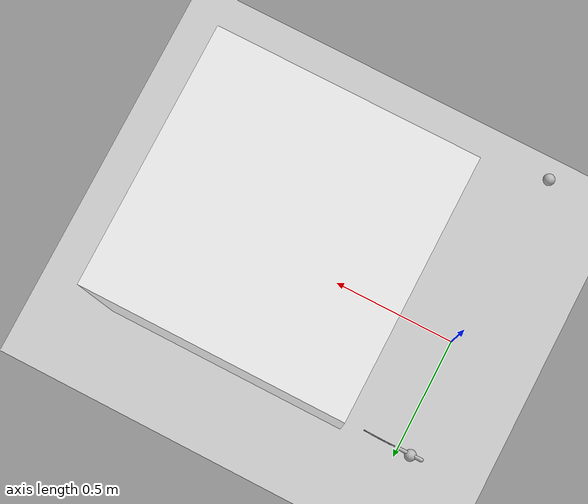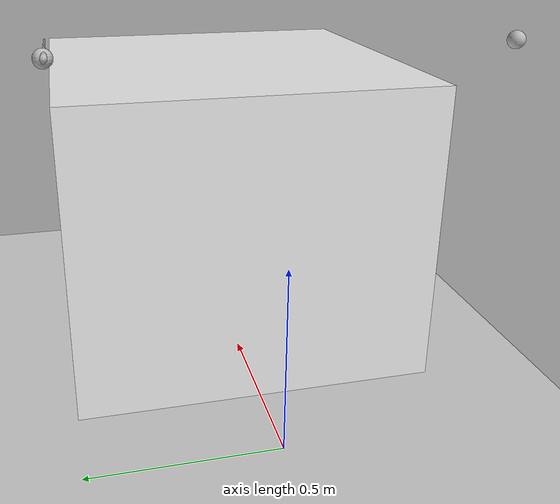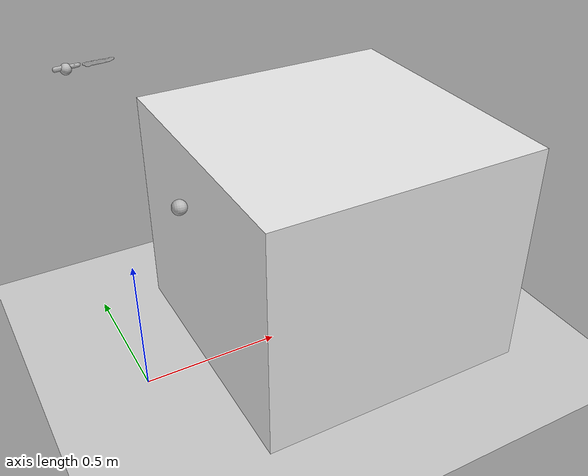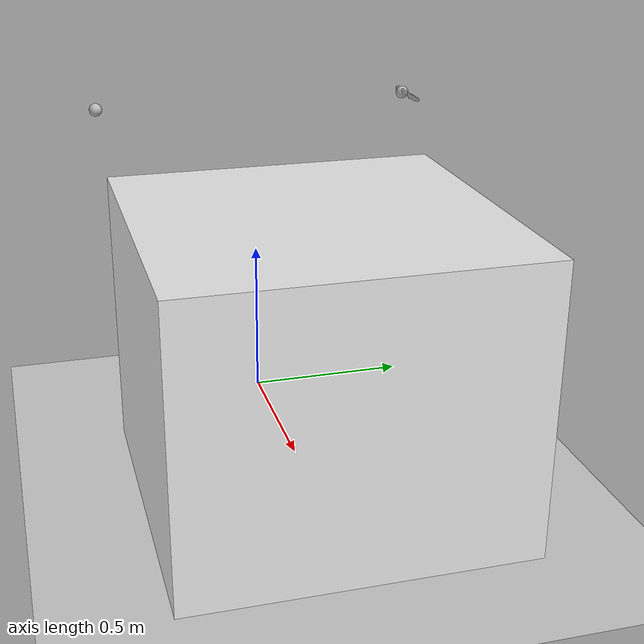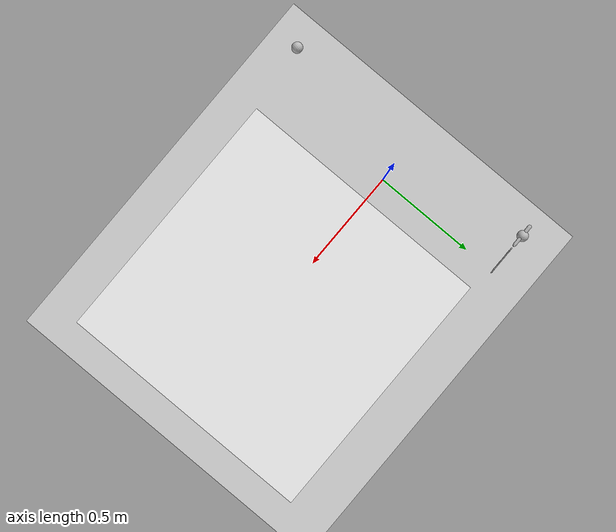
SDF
<?xml version='1.0'?>
<sdf version="1.6">
    <world name="b_big_bowl_b_table_knife_p">

        <include>
            <uri>model://sun</uri>
        </include>

        <include>
            <uri>model://ground_plane</uri>
        </include>

        <include>
            <uri>model://b_table_knife</uri>
            <pose>0.060878 0.497562 1.005864 1.616805 0 0</pose>
        </include>

        <include>
            <uri>model://b_kitchen_isle</uri>
            <pose>0.729232 0 0 0 0 0</pose>
        </include>

        <!-- Left Gripper -->
        <include>
            <uri>model://gripper</uri>
            <name>left_ee</name>
            <pose>0 0.5 1 0 0 0</pose>

            <plugin name="l_position_controller" filename="libposition_controller_plugin.so">
              <linkName>link</linkName>
              <referenceFrameName>base_link</referenceFrameName>
              <targetFrameName>l_gripper_tool_frame</targetFrameName>
            </plugin>

            <plugin name="l_grip" filename="libQGripPlugin.so">
              <parentLinkName>link</parentLinkName>
              <childLinkName>b_table_knife::link</childLinkName>
              <relativeTranslation>0.0384850800037 -0.00200759898871 0.0044107735157</relativeTranslation>
              <relativeRotationXYZW>-0.694968938828 0.0 0.0 0.719039916992</relativeRotationXYZW>
            </plugin>
        </include>

        <!-- Right Gripper -->
        <include>
            <uri>model://gripper</uri>
            <name>right_ee</name>
            <pose>0 -0.5 1 1.547368 1.402341 1.343703</pose>

            <plugin name="r_position_controller" filename="libposition_controller_plugin.so">
              <linkName>link</linkName>
              <referenceFrameName>base_link</referenceFrameName>
              <targetFrameName>r_gripper_tool_frame</targetFrameName>
            </plugin>

        </include>

        <plugin name="feature_visualization_plugin" filename="libgiskard_visualization_plugin.so"></plugin>

        <gui>
            <camera name='user_camera'>
                <pose>1.700789 1.175709 1.670612 0 0.375643 -2.675000</pose>
                <view_controller>orbit</view_controller>
            </camera>
        </gui>

    </world>
</sdf>

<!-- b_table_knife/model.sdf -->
<sdf version='1.6'>
	<model name='b_table_knife'>
		<static>false</static>
		<pose>0 0 0 0 0 0</pose>

		<link name='link'>
			<inertial>
			  <mass>0.1</mass>
			  <pose>-8.8541e-06 -4.0274e-05 -0.00010513 0 0 0</pose>
			  <inertia>
				  <ixx>0.000005</ixx>
				  <iyy>0.0002433333</iyy>
				  <izz>0.0002433333</izz>
			  </inertia>
			</inertial>
			<sensor name="tool_contact_sensor" type="contact">
				<always_on>true</always_on>
				<update_rate>30.0</update_rate>
				<contact>
					<collision>collision</collision>
				</contact>
				<plugin name="tool_bumper" filename="libgazebo_ros_bumper.so">
					<bumperTopicName>tool_contact_sensor_state</bumperTopicName>
					<frameName>world</frameName>
				</plugin>
			</sensor>
			<collision name='collision'>
				<geometry>
					<mesh>
						<uri>model://b_table_knife/b_table_knife.dae</uri>
					</mesh>
				</geometry>
				<surface>
					<friction>
						<ode>
							<mu>0.2</mu>
							<mu2>0.2</mu2>
						</ode>
					</friction>
				</surface>
			</collision>
			<visual name='visual'>
				<geometry>
					<mesh>
						<uri>model://b_table_knife/b_table_knife.dae</uri>
					</mesh>
				</geometry>
			</visual>
		</link>
	</model>
</sdf>

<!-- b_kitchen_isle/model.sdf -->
<sdf version='1.6'>
    <model name='b_kitchen_isle'>
        <static>false</static>

        <pose>0 0 0 0 0 0</pose>

        <link name='link'>
            <pose>0 0 0.425 0 0 0</pose>

            <gravity>false</gravity>

           <collision name='collision'>
               <geometry>
                   <box>
                        <size>1.0 1.0 0.85</size>
                    </box>
               </geometry>
           </collision>

            <visual name='visual'>
                <geometry>
                   <box>
                        <size>1.0 1.0 0.85</size>
                    </box>
               </geometry>
               <material>
                    <script>
                        <name>Gazebo/White</name>
                        <uri>file://media/materials/scripts/gazebo.material</uri>
                    </script>
                </material>
            </visual>

        </link>
    </model>
</sdf>

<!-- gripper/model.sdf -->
<sdf version='1.6'>
    <model name='gripper'>
        <static>false</static>
        <allow_auto_disable>false</allow_auto_disable>

        <pose>0 0 0 0 0 0</pose>

        <link name='link'>
            <pose>0 0 0 0 0 0</pose>

            <gravity>false</gravity>

            <visual name='visual'>
                <geometry>
                    <sphere>
                        <radius>0.02</radius>
                    </sphere>
                </geometry>
            </visual>

        </link>
    </model>
</sdf>
